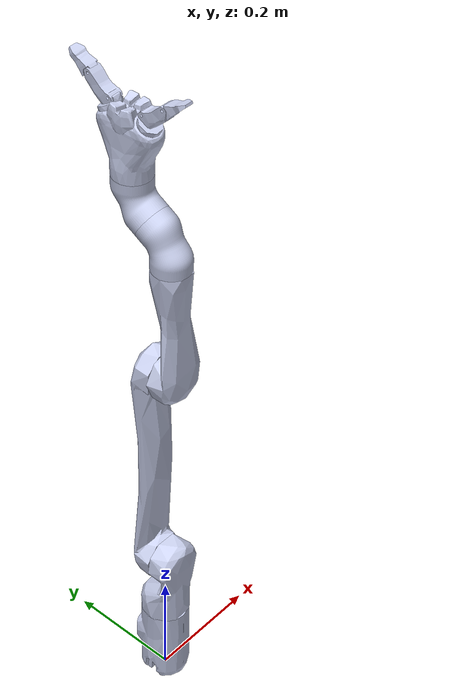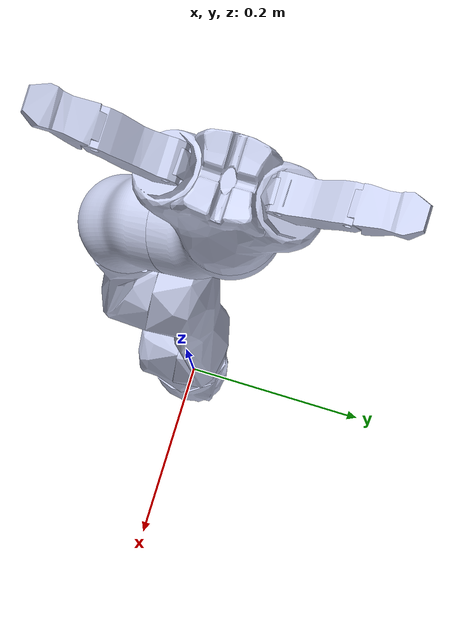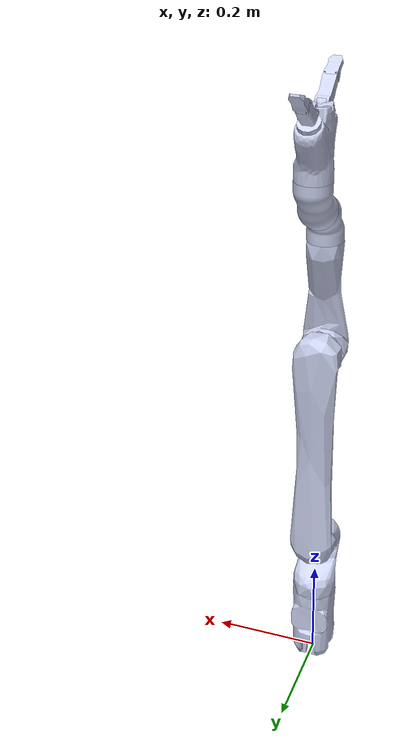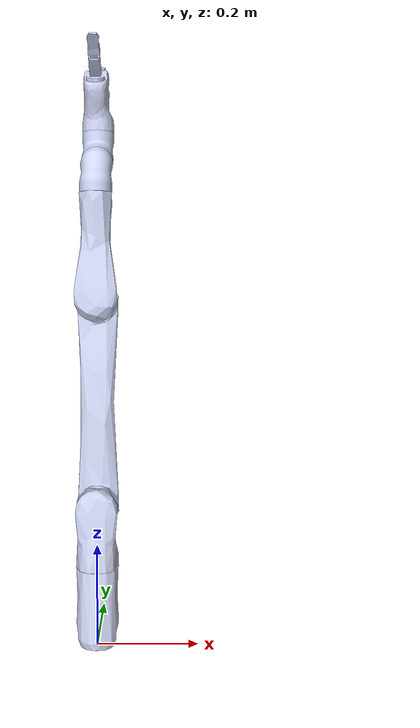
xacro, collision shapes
<?xml version="1.0"?>
<!-- j2n6s200 refers to jaco v2 6DOF non-spherical 2fingers -->

<robot xmlns:xi="http://www.w3.org/2001/XInclude"
	xmlns:xacro="http://ros.org/wiki/xacro" name="j2n6s200">

  <xacro:include filename="$(find ada_description)/robots/j2n6s200.xacro"/>
  <xacro:include filename="$(find ada_description)/robots/camera.xacro"/>
  <xacro:include filename="$(find ada_description)/robots/forque.xacro"/>

  <xacro:arg name="with_camera" default="false" />
  <xacro:arg name="with_forque" default="false" />

  <link name="world"/>
  <xacro:property name="robot_root" value="world" />
  <xacro:property name="prefix" value="j2n6s200" />

  <gazebo>
    <plugin filename="libgazebo_ros_control.so" name="gazebo_ros_control">
      <!-- This hooks up correctly but still misbehaves. -->
    </plugin>
  </gazebo>

  <xacro:j2n6s200  base_parent="${robot_root}" hide_final_ring="$(arg with_camera)"/>
  <!--xacro:j2n6s200  base_parent="${robot_root}" /-->

  <xacro:if value="$(arg with_camera)">
    <xacro:camera  camera_parent="${prefix}_link_6"/>
  </xacro:if>

  <xacro:if value="$(arg with_forque)">
    <xacro:forque  forque_parent="${prefix}_end_effector"/>
  </xacro:if>
</robot>

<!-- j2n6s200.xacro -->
<!-- j2_6n refers to jaco v2 6DOF non-spherical -->

<root xmlns:xi="http://www.w3.org/2001/XInclude"
    xmlns:xacro="http://ros.org/wiki/xacro">

    <xacro:include filename="$(find ada_description)/robots/kinova_common.xacro" />
    <xacro:include filename="$(find ada_description)/robots/kinova_finger_set.xacro" />

    <property name="link_base_mesh" value="base" />
    <property name="link_1_mesh" value="shoulder" />
    <property name="link_2_mesh" value="arm" />
    <property name="link_3_mesh" value="forearm" />
    <property name="link_4_mesh" value="wrist" />
    <property name="link_5_mesh" value="wrist" />
    <property name="link_6_mesh" value="hand_2finger" />

    <property name="link_base_mesh_no" value="0" />
    <property name="link_1_mesh_no" value="1" />
    <property name="link_2_mesh_no" value="2" />
    <property name="link_3_mesh_no" value="3" />
    <property name="link_4_mesh_no" value="4" />
    <property name="link_5_mesh_no" value="4" />
    <property name="link_6_mesh_no" value="56" />

    <property name="joint_base" value="joint_base" />
    <property name="joint_base_type" value="fixed" />
    <property name="joint_base_axis_xyz" value="0 0 0" />
    <property name="joint_base_origin_xyz" value="0 0 0" />
    <property name="joint_base_origin_rpy" value="0 0 0" />

    <property name="joint_1" value="joint_1" />
    <property name="joint_1_type" value="continuous" />
    <property name="joint_1_axis_xyz" value="0 0 1" />
    <property name="joint_1_origin_xyz" value="0 0 0.15675" />
    <property name="joint_1_origin_rpy" value="0 ${J_PI} 0" />
    <property name="joint_1_lower_limit" value="${-2*J_PI}" />
    <property name="joint_1_upper_limit" value="${2*J_PI}" />

    <property name="joint_2" value="joint_2" />
    <property name="joint_2_type" value="revolute" />
    <property name="joint_2_axis_xyz" value="0 0 1" />
    <property name="joint_2_origin_xyz" value="0 0.0016 -0.11875" />
    <property name="joint_2_origin_rpy" value="-${J_PI/2} 0 ${J_PI}" />
    <property name="joint_2_lower_limit" value="${47/180*J_PI}" />
    <property name="joint_2_upper_limit" value="${313/180*J_PI}" />

    <property name="joint_3" value="joint_3" />
    <property name="joint_3_type" value="revolute" />
    <property name="joint_3_axis_xyz" value="0 0 1" />
    <property name="joint_3_origin_xyz" value="0 -0.410 0" />
    <property name="joint_3_origin_rpy" value="0 ${J_PI} 0" />
    <property name="joint_3_lower_limit" value="${19/180*J_PI}" />
    <property name="joint_3_upper_limit" value="${341/180*J_PI}" />

    <property name="joint_4" value="joint_4" />
    <property name="joint_4_type" value="continuous" />
    <property name="joint_4_axis_xyz" value="0 0 1" />
    <property name="joint_4_origin_xyz" value="0 0.2073 -0.0114" />
    <property name="joint_4_origin_rpy" value="-${J_PI/2} 0 ${J_PI}" />
    <property name="joint_4_lower_limit" value="${-2*J_PI}" />
    <property name="joint_4_upper_limit" value="${2*J_PI}" />

    <property name="joint_5" value="joint_5" />
    <property name="joint_5_type" value="continuous" />
    <property name="joint_5_axis_xyz" value="0 0 1" />
    <property name="joint_5_origin_xyz" value="0 -0.03703 -0.06414" />
    <property name="joint_5_origin_rpy" value="${J_PI/3} 0 ${J_PI}" />
    <property name="joint_5_lower_limit" value="${-2*J_PI}" />
    <property name="joint_5_upper_limit" value="${2*J_PI}" />

    <property name="joint_6" value="joint_6" />
    <property name="joint_6_type" value="continuous" />
    <property name="joint_6_axis_xyz" value="0 0 1" />
    <property name="joint_6_origin_xyz" value="0 -0.03703 -0.06414" />
    <property name="joint_6_origin_rpy" value="${J_PI/3} 0 ${J_PI}" />
    <property name="joint_6_lower_limit" value="${-2*J_PI}" />
    <property name="joint_6_upper_limit" value="${2*J_PI}" />

    <property name="joint_end_effector" value="end_effector_offset" />
    <property name="joint_end_effector_type" value="fixed" />
    <property name="joint_end_effector_axis_xyz" value="0 0 0" />
    <property name="joint_end_effector_origin_xyz" value="0 0 -0.1600" />
    <property name="joint_end_effector_origin_rpy" value="${J_PI} 0 0" />

    <property name="joint_hand_tip" value="end_effector_offset" />
    <property name="joint_hand_tip_type" value="fixed" />
    <property name="joint_hand_tip_axis_xyz" value="0 0 0" />
    <property name="joint_hand_tip_origin_xyz" value="0 0 0.0370" />
    <property name="joint_hand_tip_origin_rpy" value="0 0 0" />

    <property name="joint_hand_base" value="hand_base" />
    <property name="joint_hand_base_type" value="fixed" />
    <property name="joint_hand_base_axis_xyz" value="0 0 0" />
    <property name="joint_hand_base_origin_xyz" value="0 0 0" />
    <property name="joint_hand_base_origin_rpy" value="0 0 0" />

    <xacro:macro name="j2n6s200" params="base_parent hide_final_ring:=false prefix:=j2n6s200">

        <!--xacro:gazebo_config robot_namespace="${prefix}"/-->

        <xacro:kinova_armlink link_name="${prefix}_link_base" link_mesh="${link_base_mesh}" mesh_no="${link_base_mesh_no}"/>
        <xacro:kinova_armjoint joint_name="${prefix}_joint_base" type="${joint_base_type}" parent="${base_parent}" child="${prefix}_link_base" joint_axis_xyz="${joint_base_axis_xyz}" joint_origin_xyz="${joint_base_origin_xyz}" joint_origin_rpy="${joint_base_origin_rpy}" joint_lower_limit="0" joint_upper_limit="0" fixed="true"/>

        <xacro:kinova_armlink link_name="${prefix}_link_1" link_mesh="${link_1_mesh}" use_ring_mesh="true" mesh_no="${link_1_mesh_no}"/>
        <xacro:kinova_armjoint joint_name="${prefix}_joint_1" type="${joint_1_type}" parent="${prefix}_link_base" child="${prefix}_link_1" joint_axis_xyz="${joint_1_axis_xyz}" joint_origin_xyz="${joint_1_origin_xyz}" joint_origin_rpy="${joint_1_origin_rpy}" joint_lower_limit="${joint_1_lower_limit}" joint_upper_limit="${joint_1_upper_limit}"/>

        <xacro:kinova_armlink link_name="${prefix}_link_2" link_mesh="${link_2_mesh}" use_ring_mesh="true" mesh_no="${link_2_mesh_no}"/>
        <xacro:kinova_armjoint joint_name="${prefix}_joint_2" type="${joint_2_type}" parent="${prefix}_link_1" child="${prefix}_link_2" joint_axis_xyz="${joint_2_axis_xyz}" joint_origin_xyz="${joint_2_origin_xyz}" joint_origin_rpy="${joint_2_origin_rpy}" joint_lower_limit="${joint_2_lower_limit}" joint_upper_limit="${joint_2_upper_limit}"/>

        <xacro:kinova_armlink link_name="${prefix}_link_3" link_mesh="${link_3_mesh}" use_ring_mesh="true" mesh_no="${link_3_mesh_no}"/>
        <xacro:kinova_armjoint joint_name="${prefix}_joint_3" type="${joint_3_type}" parent="${prefix}_link_2" child="${prefix}_link_3" joint_axis_xyz="${joint_3_axis_xyz}" joint_origin_xyz="${joint_3_origin_xyz}" joint_origin_rpy="${joint_3_origin_rpy}" joint_lower_limit="${joint_3_lower_limit}" joint_upper_limit="${joint_3_upper_limit}"/>

        <xacro:kinova_armlink link_name="${prefix}_link_4" link_mesh="${link_4_mesh}" use_ring_mesh="true" ring_mesh="ring_small" mesh_no="${link_4_mesh_no}"/>
        <xacro:kinova_armjoint joint_name="${prefix}_joint_4" type="${joint_4_type}" parent="${prefix}_link_3" child="${prefix}_link_4" joint_axis_xyz="${joint_4_axis_xyz}" joint_origin_xyz="${joint_4_origin_xyz}" joint_origin_rpy="${joint_4_origin_rpy}" joint_lower_limit="${joint_4_lower_limit}" joint_upper_limit="${joint_4_upper_limit}"/>

        <xacro:kinova_armlink link_name="${prefix}_link_5" link_mesh="${link_5_mesh}" use_ring_mesh="true" ring_mesh="ring_small" mesh_no="${link_5_mesh_no}"/>
        <xacro:kinova_armjoint joint_name="${prefix}_joint_5" type="${joint_5_type}" parent="${prefix}_link_4" child="${prefix}_link_5" joint_axis_xyz="${joint_5_axis_xyz}" joint_origin_xyz="${joint_5_origin_xyz}" joint_origin_rpy="${joint_5_origin_rpy}" joint_lower_limit="${joint_5_lower_limit}" joint_upper_limit="${joint_5_upper_limit}"/>

        <xacro:kinova_armlink link_name="${prefix}_link_6" link_mesh="${link_6_mesh}" use_ring_mesh="${'false' == hide_final_ring}" ring_mesh="ring_small" mesh_no="${link_6_mesh_no}"/>
        <xacro:kinova_armjoint joint_name="${prefix}_joint_6" type="${joint_6_type}" parent="${prefix}_link_5" child="${prefix}_link_6" joint_axis_xyz="${joint_6_axis_xyz}" joint_origin_xyz="${joint_6_origin_xyz}" joint_origin_rpy="${joint_6_origin_rpy}" joint_lower_limit="${joint_6_lower_limit}" joint_upper_limit="${joint_6_upper_limit}"/>

        <xacro:kinova_virtual_link link_name="${prefix}_end_effector"/>
        <xacro:kinova_virtual_joint joint_name="${prefix}_joint_end_effector" type="${joint_end_effector_type}" parent="${prefix}_link_6" child="${prefix}_end_effector" joint_axis_xyz="${joint_end_effector_axis_xyz}" joint_origin_xyz="${joint_end_effector_origin_xyz}" joint_origin_rpy="${joint_end_effector_origin_rpy}" joint_lower_limit="0" joint_upper_limit="0"/>

        <xacro:kinova_virtual_link link_name="${prefix}_hand_tip"/>
        <xacro:kinova_virtual_joint joint_name="${prefix}_joint_hand_tip" type="${joint_hand_tip_type}" parent="${prefix}_end_effector" child="${prefix}_hand_tip" joint_axis_xyz="${joint_hand_tip_axis_xyz}" joint_origin_xyz="${joint_hand_tip_origin_xyz}" joint_origin_rpy="${joint_hand_tip_origin_rpy}" joint_lower_limit="0" joint_upper_limit="0"/>

        <xacro:kinova_virtual_link link_name="${prefix}_hand_base"/>
        <xacro:kinova_virtual_joint joint_name="${prefix}_joint_hand_base" type="${joint_hand_base_type}" parent="${prefix}_link_6" child="${prefix}_hand_base" joint_axis_xyz="${joint_hand_base_axis_xyz}" joint_origin_xyz="${joint_hand_base_origin_xyz}" joint_origin_rpy="${joint_hand_base_origin_rpy}" joint_lower_limit="0" joint_upper_limit="0"/>

        <xacro:kinova_2fingers link_hand="${prefix}_hand_base" prefix="${prefix}_"/>
    </xacro:macro>

</root>

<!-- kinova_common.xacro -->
<root xmlns:xi="http://www.w3.org/2001/XInclude"
	xmlns:xacro="http://ros.org/wiki/xacro">

<xacro:include filename="$(find ada_description)/robots/kinova_inertial.xacro" />

    <xacro:property name="J_PI" value="3.1415926535897931" />

    <xacro:macro name="kinova_armlink" params="link_name link_mesh ring_mesh:=ring_big use_ring_mesh:=false mesh_no">
        <link name="${link_name}">
            <visual>
                <geometry>
                    <mesh
                        filename="package://ada_description/meshes/${link_mesh}.dae"/>
                </geometry>
                <material name="carbon_fiber">
                    <color rgba="0.792156862745098 0.819607843137255 0.933333333333333 1" />
                </material>
            </visual>

	    <!-- Adding ring to the model -->
	         <xacro:if value="${use_ring_mesh}">
	           <visual>
                <geometry>
                    <mesh
                        filename="package://ada_description/meshes/${ring_mesh}.dae"/>
                </geometry>
             </visual>
	    </xacro:if>

            <collision>
                <geometry>
                    <mesh
                        filename="package://ada_description/meshes/collision_${link_mesh}.dae"/>
                </geometry>
            </collision>
						<xacro:kinova_inertial mesh_no="${mesh_no}"/>
      </link>

    </xacro:macro>

  <xacro:macro name="kinova_armjoint" params="joint_name type parent child joint_axis_xyz joint_origin_xyz joint_origin_rpy joint_lower_limit joint_upper_limit joint_velocity_limit=1.0 fixed:=false">
    <joint name="${joint_name}" type="${type}">
        <parent link="${parent}"/>
        <child link="${child}"/>
        <axis xyz="${joint_axis_xyz}"/>
        <limit effort="2000" velocity="${joint_velocity_limit}" lower="${joint_lower_limit}" upper="${joint_upper_limit}"/>
        <origin xyz="${joint_origin_xyz}" rpy="${joint_origin_rpy}"/>
        <dynamics damping="0.0" friction="0.0"/>
     </joint>
   <xacro:unless value="${fixed}">
     <transmission name="${joint_name}_trans">
        <type>transmission_interface/SimpleTransmission</type>
        <joint name="${joint_name}">
          <hardwareInterface>hardware_interface/VelocityJointInterface</hardwareInterface>
        </joint>
        <actuator name="${joint_name}_actuator">
          <hardwareInterface>hardware_interface/VelocityJointInterface</hardwareInterface>
        <mechanicalReduction>160</mechanicalReduction>
        </actuator>
     </transmission>
     </xacro:unless>
  </xacro:macro>

    <xacro:macro name="kinova_virtual_link" params="link_name">
      <link name="${link_name}">
        <inertial>
          <origin xyz="0.0 0.0 0.0" rpy="0 0 0"/>
          <mass value="0.3"/>
          <inertia ixx="0.1" ixy="0.4" ixz="0.1" iyy="0.5" iyz="0.9" izz="0.2"/>
        </inertial>
      </link>
    </xacro:macro>

    <xacro:macro name="kinova_virtual_joint" params="joint_name type parent child joint_axis_xyz joint_origin_xyz joint_origin_rpy joint_lower_limit joint_upper_limit">
    <joint name="${joint_name}" type="${type}">
        <parent link="${parent}"/>
        <child link="${child}"/>
        <axis xyz="${joint_axis_xyz}"/>
        <limit effort="2000" velocity="1" lower="${joint_lower_limit}" upper="${joint_upper_limit}"/>
        <origin xyz="${joint_origin_xyz}" rpy="${joint_origin_rpy}"/>
     </joint>
    </xacro:macro>

    <xacro:macro name="kinova_finger" params="prefix finger_number hand finger_origin_xyz finger_origin_rpy">

        <xacro:kinova_armlink link_name="${prefix}link_finger_${finger_number}" link_mesh="finger_proximal" mesh_no="57"/>

        <joint name="${prefix}joint_finger_${finger_number}" type="revolute">
            <parent link="${hand}"/>
            <child link="${prefix}link_finger_${finger_number}"/>
            <axis xyz="0 0 1"/>
            <origin xyz="${finger_origin_xyz}" rpy="${finger_origin_rpy}"/>
            <limit lower="0" upper="2" effort="2000" velocity="1"/>
        </joint>
		    <transmission name="${prefix}joint_finger_${finger_number}_trans">
					<type>transmission_interface/SimpleTransmission</type>
					<joint name="${prefix}joint_finger_${finger_number}">
                                          <hardwareInterface>hardware_interface/VelocityJointInterface</hardwareInterface>
					</joint>
					<actuator name="${prefix}joint_finger_${finger_number}_actuator">
                                        <hardwareInterface>hardware_interface/VelocityJointInterface</hardwareInterface>
					<mechanicalReduction>1</mechanicalReduction>
					</actuator>
		    </transmission>

        <xacro:kinova_armlink link_name="${prefix}link_finger_tip_${finger_number}" link_mesh="finger_distal" mesh_no="58"/>

        <joint name="${prefix}joint_finger_tip_${finger_number}" type="fixed">
            <parent link="${prefix}link_finger_${finger_number}"/>
            <child link="${prefix}link_finger_tip_${finger_number}"/>
            <axis xyz="0 0 1"/>
            <origin xyz="0.044 -0.003 0" rpy="0 0 0"/>
            <limit lower="0" upper="2" effort="0" velocity="1"/>
        </joint>

    </xacro:macro>

</root>

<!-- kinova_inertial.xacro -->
<root xmlns:xi="http://www.w3.org/2001/XInclude"
	xmlns:gazebo="http://playerstage.sourceforge.net/gazebo/xmlschema/#gz"
    xmlns:model="http://playerstage.sourceforge.net/gazebo/xmlschema/#model"
	xmlns:sensor="http://playerstage.sourceforge.net/gazebo/xmlschema/#sensor"
	xmlns:body="http://playerstage.sourceforge.net/gazebo/xmlschema/#body"
    xmlns:geom="http://playerstage.sourceforge.net/gazebo/xmlschema/#geom"
    xmlns:joint="http://playerstage.sourceforge.net/gazebo/xmlschema/#joint"
	xmlns:controller="http://playerstage.sourceforge.net/gazebo/xmlschema/#controller"
	xmlns:interface="http://playerstage.sourceforge.net/gazebo/xmlschema/#interface"
	xmlns:rendering="http://playerstage.sourceforge.net/gazebo/xmlschema/#rendering"
    xmlns:renderable="http://playerstage.sourceforge.net/gazebo/xmlschema/#renderable"
    xmlns:physics="http://playerstage.sourceforge.net/gazebo/xmlschema/#physics"
	xmlns:xacro="http://ros.org/wiki/xacro">

<xacro:macro name="inertia_cylinder" params="mass height radius axis:=0">

  <!-- z Axis -->
  <xacro:unless value="${axis}">
    <inertia  ixx="${0.083333 * mass * (3*radius*radius + height*height)}" ixy="0" ixz="0"
              iyy="${0.083333 * mass * (3*radius*radius + height*height)}" iyz="0"
              izz="${0.5*mass*radius*radius}" />
  </xacro:unless>

  <!-- y Axis -->
  <xacro:unless value="${axis-1}">
   <inertia  ixx="${0.083333 * mass * (3*radius*radius + height*height)}" ixy="0" ixz="0"
             iyy="${0.5*mass*radius*radius}"
             izz="${0.083333 * mass * (3*radius*radius + height*height)}" iyz="0" />
  </xacro:unless>

  <!-- x Axis -->
  <xacro:unless value="${axis-2}">
   <inertia  ixx="${0.5*mass*radius*radius}"
             iyy="${0.083333 * mass * (3*radius*radius + height*height)}" iyz="0"
             izz="${0.083333 * mass * (3*radius*radius + height*height)}" ixy="0" ixz="0" />
  </xacro:unless>
</xacro:macro>

<xacro:macro name="kinova_inertial" params="mesh_no">
  <!-- base = 0 -->
  <xacro:unless value="${mesh_no}">
    <inertial>
        <mass value="0.46784" />
        <origin xyz="0 0 0.1255" rpy="0 0 0"/>
        <xacro:inertia_cylinder height="0.14"  radius = "0.04" mass="0.46784"/>
    </inertial>
  </xacro:unless>

  <!-- shoulder = 1 -->
  <xacro:unless value="${mesh_no-1}">
    <inertial>
        <mass value="0.7477" />
        <origin xyz="0 -0.002 -0.0605" />
        <xacro:inertia_cylinder height="0.14"  radius = "0.04" mass="0.7477"/>
    </inertial>
  </xacro:unless>

  <!-- arm = 2-->
  <xacro:unless value="${mesh_no-2}">
    <inertial>
        <mass value="0.99" />
        <origin xyz="0 -0.2065 -0.01" />
        <xacro:inertia_cylinder height="0.35"  radius = "0.04" mass="0.99" axis="1"/>
    </inertial>
  </xacro:unless>

  <!-- forearm = 3 -->
  <xacro:unless value="${mesh_no-3}">
    <inertial>
        <mass value="0.6763" />
        <origin xyz="0 0.081 -0.0086" />
        <xacro:inertia_cylinder height="0.15"  radius = "0.03" mass="0.6763" axis="1"/>
    </inertial>
  </xacro:unless>

  <!-- wrist = 4 -->
  <xacro:unless value="${mesh_no-4}">
    <inertial>
        <mass value="0.1785" />
        <origin xyz="0 -0.037 -0.0642" />
        <xacro:inertia_cylinder height="0.02"  radius = "0.04" mass="0.1785"/>
    </inertial>
  </xacro:unless>

<!--arm_mico       		5 -->
  <xacro:unless value="${mesh_no-5}">
    <inertial>
        <mass value="0.85968" />
        <origin xyz="0 -0.145  -0.0076"/>
        <xacro:inertia_cylinder height="0.25"  radius = "0.03" mass="0.85968" axis="1"/>
    </inertial>
  </xacro:unless>

<!--   arm_half1 (7dof)		6 -->
  <xacro:unless value="${mesh_no-6}">
    <inertial>
        <mass value="0.8447" />
        <origin xyz="0 -0.103563213 0" />
        <xacro:inertia_cylinder height="0.18"  radius = "0.03" mass="0.8447" axis="1"/>
    </inertial>
  </xacro:unless>

<!--   wrist_spherical_1  8 -->
  <xacro:unless value="${mesh_no-8}">
    <inertial>
        <mass value="0.463" />
        <origin xyz="0 0.0028848942 -0.0541932613" />
        <xacro:inertia_cylinder height="0.1"  radius = "0.02" mass="0.463"/>
    </inertial>
  </xacro:unless>
<!--   wrist_spherical_2  9 -->
  <xacro:unless value="${mesh_no-9}">
    <inertial>
        <mass value="0.463" />
        <origin xyz="0 0.0497208855 -0.0028562765" />
        <xacro:inertia_cylinder height="0.1"  radius = "0.02" mass="0.463" axis="1"/>
    </inertial>
  </xacro:unless>

  <!-- hand 3 finger = 55 -->
  <xacro:unless value="${mesh_no - 55}">
    <inertial>
        <mass value="0.99" />
        <origin xyz="0 0 -0.06" />
        <xacro:inertia_cylinder height="0.03"  radius = "0.04" mass="0.727"/>
    </inertial>
  </xacro:unless>

  <!-- hand 2 finger = 56 -->
  <xacro:unless value="${mesh_no - 56}">
   <inertial>
        <mass value="0.78" />
        <origin xyz="0 0 -0.06" />
        <xacro:inertia_cylinder height="0.03"  radius = "0.04" mass="0.78"/>
    </inertial>
  </xacro:unless>

  <!-- finger_proximal = 57 -->
  <xacro:unless value="${mesh_no - 57}">
    <inertial>
        <mass value="0.01" />
        <origin xyz="0.022 0 0" />
        <xacro:inertia_cylinder height="0.03"  radius = "0.004" mass="0.01"/>
    </inertial>

  </xacro:unless>

  <!-- finger_distal = 58 -->
  <xacro:unless value="${mesh_no - 58}">
    <inertial>
        <mass value="0.01" />
        <origin xyz="0.022 0 0" />
        <xacro:inertia_cylinder height="0.03"  radius = "0.004" mass="0.01"/>
    </inertial>
  </xacro:unless>

</xacro:macro>
</root>
